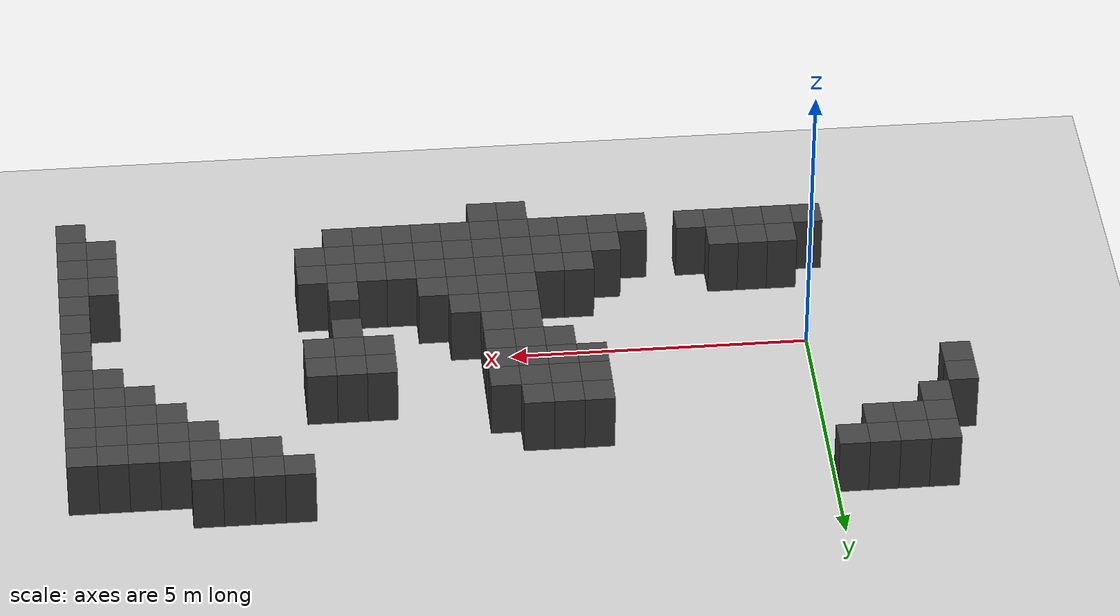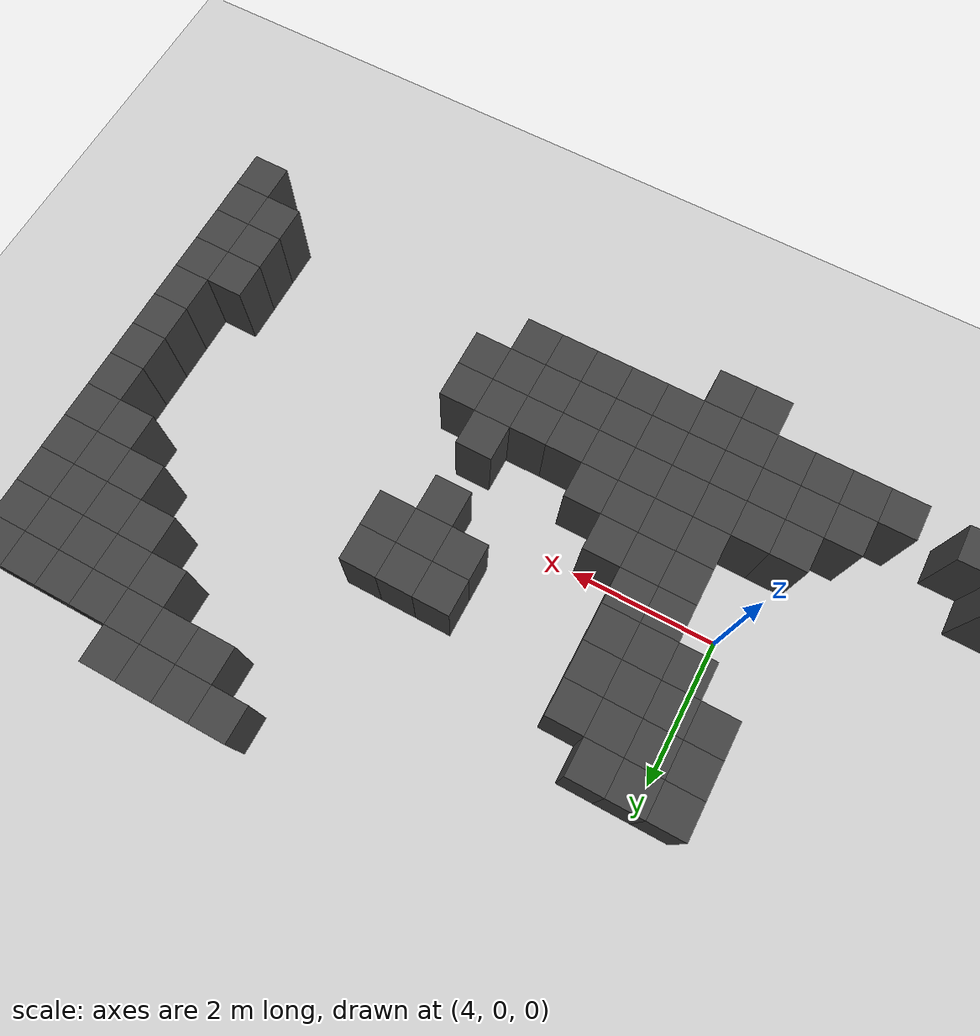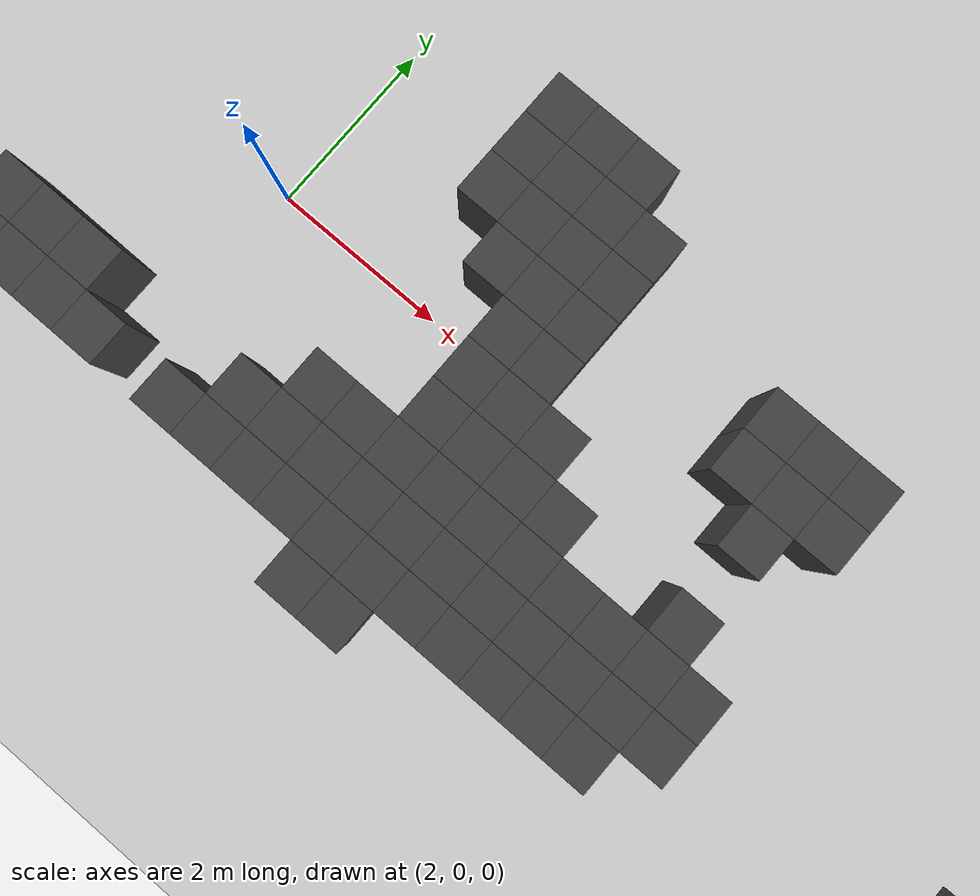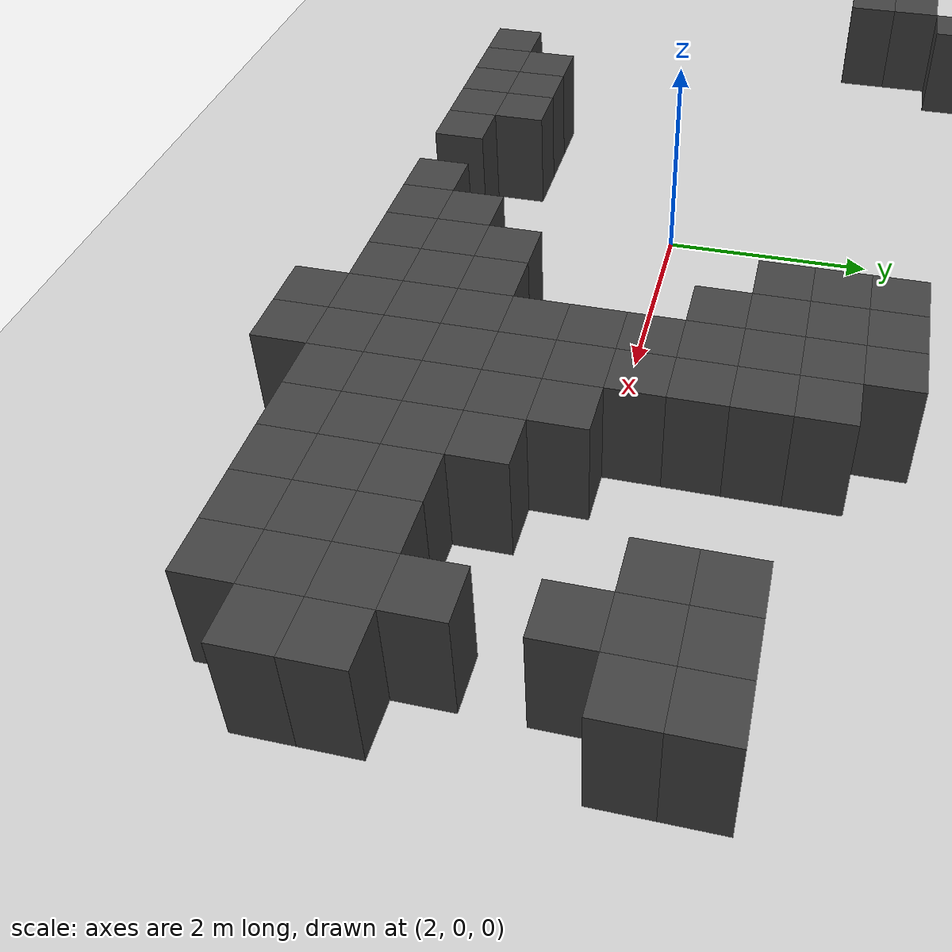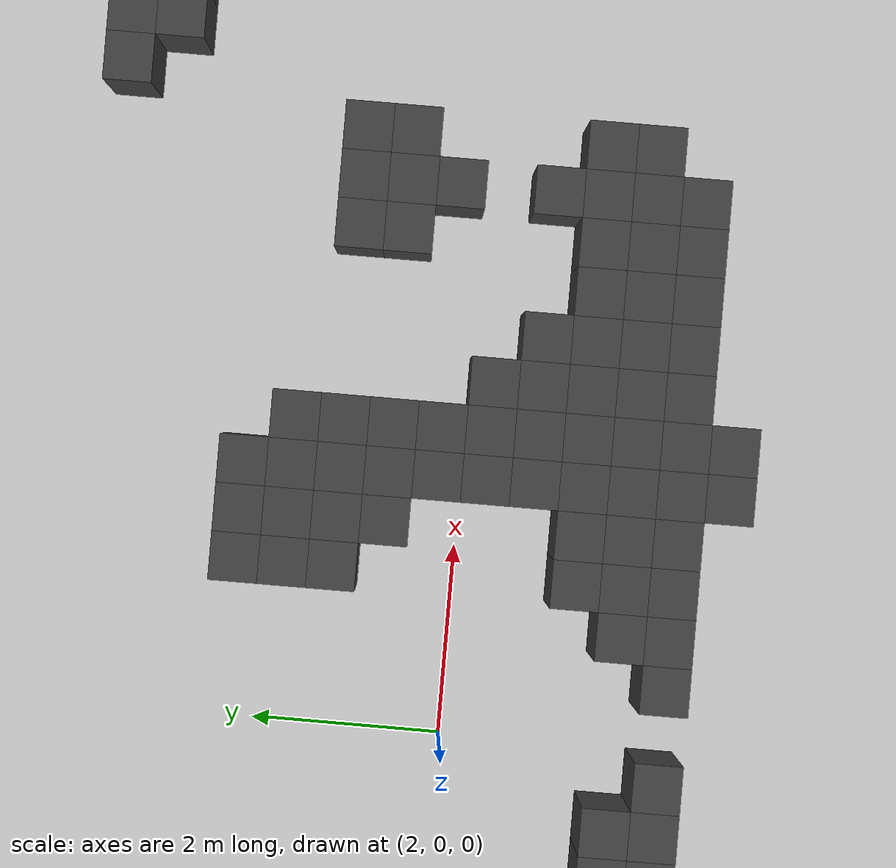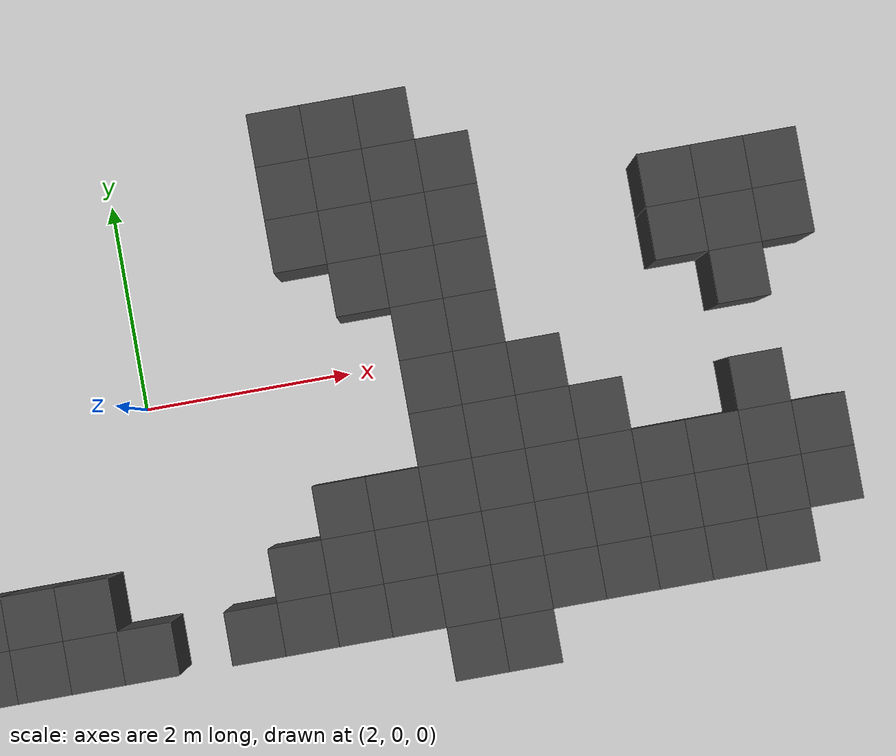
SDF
<sdf version="1.7">
 <world name="map_9705">
  <model name="ground_plane">
   <static>true</static>
   <link name="link">
    <collision name="collision">
     <geometry><plane><normal>0 0 1</normal><size>200 200</size></plane></geometry>
    </collision>
    <visual name="visual">
     <geometry><plane><normal>0 0 1</normal><size>200 200</size></plane></geometry>
     <material><ambient>0.8 0.8 0.8 1</ambient><diffuse>0.8 0.8 0.8 1</diffuse></material>
    </visual>
   </link>
  </model>
  <model name="maze_environment">
   <static>true</static>
   <link name="wall_421">
    <pose>-1.750 3.750 0.500 0 0 0</pose>
    <collision name="col"><geometry><box><size>0.5 0.5 1.0</size></box></geometry></collision>
    <visual name="vis">
     <geometry><box><size>0.5 0.5 1.0</size></box></geometry>
     <material><ambient>0.15 0.15 0.15 1</ambient><diffuse>0.25 0.25 0.25 1</diffuse></material>
    </visual>
   </link>
   <link name="wall_422">
    <pose>-1.250 3.750 0.500 0 0 0</pose>
    <collision name="col"><geometry><box><size>0.5 0.5 1.0</size></box></geometry></collision>
    <visual name="vis">
     <geometry><box><size>0.5 0.5 1.0</size></box></geometry>
     <material><ambient>0.15 0.15 0.15 1</ambient><diffuse>0.25 0.25 0.25 1</diffuse></material>
    </visual>
   </link>
   <link name="wall_423">
    <pose>-0.750 3.750 0.500 0 0 0</pose>
    <collision name="col"><geometry><box><size>0.5 0.5 1.0</size></box></geometry></collision>
    <visual name="vis">
     <geometry><box><size>0.5 0.5 1.0</size></box></geometry>
     <material><ambient>0.15 0.15 0.15 1</ambient><diffuse>0.25 0.25 0.25 1</diffuse></material>
    </visual>
   </link>
   <link name="wall_424">
    <pose>-0.250 3.750 0.500 0 0 0</pose>
    <collision name="col"><geometry><box><size>0.5 0.5 1.0</size></box></geometry></collision>
    <visual name="vis">
     <geometry><box><size>0.5 0.5 1.0</size></box></geometry>
     <material><ambient>0.15 0.15 0.15 1</ambient><diffuse>0.25 0.25 0.25 1</diffuse></material>
    </visual>
   </link>
   <link name="wall_425">
    <pose>8.750 3.750 0.500 0 0 0</pose>
    <collision name="col"><geometry><box><size>0.5 0.5 1.0</size></box></geometry></collision>
    <visual name="vis">
     <geometry><box><size>0.5 0.5 1.0</size></box></geometry>
     <material><ambient>0.15 0.15 0.15 1</ambient><diffuse>0.25 0.25 0.25 1</diffuse></material>
    </visual>
   </link>
   <link name="wall_426">
    <pose>9.250 3.750 0.500 0 0 0</pose>
    <collision name="col"><geometry><box><size>0.5 0.5 1.0</size></box></geometry></collision>
    <visual name="vis">
     <geometry><box><size>0.5 0.5 1.0</size></box></geometry>
     <material><ambient>0.15 0.15 0.15 1</ambient><diffuse>0.25 0.25 0.25 1</diffuse></material>
    </visual>
   </link>
   <link name="wall_427">
    <pose>9.750 3.750 0.500 0 0 0</pose>
    <collision name="col"><geometry><box><size>0.5 0.5 1.0</size></box></geometry></collision>
    <visual name="vis">
     <geometry><box><size>0.5 0.5 1.0</size></box></geometry>
     <material><ambient>0.15 0.15 0.15 1</ambient><diffuse>0.25 0.25 0.25 1</diffuse></material>
    </visual>
   </link>
   <link name="wall_428">
    <pose>10.250 3.750 0.500 0 0 0</pose>
    <collision name="col"><geometry><box><size>0.5 0.5 1.0</size></box></geometry></collision>
    <visual name="vis">
     <geometry><box><size>0.5 0.5 1.0</size></box></geometry>
     <material><ambient>0.15 0.15 0.15 1</ambient><diffuse>0.25 0.25 0.25 1</diffuse></material>
    </visual>
   </link>
   <link name="wall_452">
    <pose>-1.750 3.250 0.500 0 0 0</pose>
    <collision name="col"><geometry><box><size>0.5 0.5 1.0</size></box></geometry></collision>
    <visual name="vis">
     <geometry><box><size>0.5 0.5 1.0</size></box></geometry>
     <material><ambient>0.15 0.15 0.15 1</ambient><diffuse>0.25 0.25 0.25 1</diffuse></material>
    </visual>
   </link>
   <link name="wall_453">
    <pose>-1.250 3.250 0.500 0 0 0</pose>
    <collision name="col"><geometry><box><size>0.5 0.5 1.0</size></box></geometry></collision>
    <visual name="vis">
     <geometry><box><size>0.5 0.5 1.0</size></box></geometry>
     <material><ambient>0.15 0.15 0.15 1</ambient><diffuse>0.25 0.25 0.25 1</diffuse></material>
    </visual>
   </link>
   <link name="wall_454">
    <pose>-0.750 3.250 0.500 0 0 0</pose>
    <collision name="col"><geometry><box><size>0.5 0.5 1.0</size></box></geometry></collision>
    <visual name="vis">
     <geometry><box><size>0.5 0.5 1.0</size></box></geometry>
     <material><ambient>0.15 0.15 0.15 1</ambient><diffuse>0.25 0.25 0.25 1</diffuse></material>
    </visual>
   </link>
   <link name="wall_455">
    <pose>9.250 3.250 0.500 0 0 0</pose>
    <collision name="col"><geometry><box><size>0.5 0.5 1.0</size></box></geometry></collision>
    <visual name="vis">
     <geometry><box><size>0.5 0.5 1.0</size></box></geometry>
     <material><ambient>0.15 0.15 0.15 1</ambient><diffuse>0.25 0.25 0.25 1</diffuse></material>
    </visual>
   </link>
   <link name="wall_456">
    <pose>9.750 3.250 0.500 0 0 0</pose>
    <collision name="col"><geometry><box><size>0.5 0.5 1.0</size></box></geometry></collision>
    <visual name="vis">
     <geometry><box><size>0.5 0.5 1.0</size></box></geometry>
     <material><ambient>0.15 0.15 0.15 1</ambient><diffuse>0.25 0.25 0.25 1</diffuse></material>
    </visual>
   </link>
   <link name="wall_457">
    <pose>10.250 3.250 0.500 0 0 0</pose>
    <collision name="col"><geometry><box><size>0.5 0.5 1.0</size></box></geometry></collision>
    <visual name="vis">
     <geometry><box><size>0.5 0.5 1.0</size></box></geometry>
     <material><ambient>0.15 0.15 0.15 1</ambient><diffuse>0.25 0.25 0.25 1</diffuse></material>
    </visual>
   </link>
   <link name="wall_458">
    <pose>10.750 3.250 0.500 0 0 0</pose>
    <collision name="col"><geometry><box><size>0.5 0.5 1.0</size></box></geometry></collision>
    <visual name="vis">
     <geometry><box><size>0.5 0.5 1.0</size></box></geometry>
     <material><ambient>0.15 0.15 0.15 1</ambient><diffuse>0.25 0.25 0.25 1</diffuse></material>
    </visual>
   </link>
   <link name="wall_459">
    <pose>11.250 3.250 0.500 0 0 0</pose>
    <collision name="col"><geometry><box><size>0.5 0.5 1.0</size></box></geometry></collision>
    <visual name="vis">
     <geometry><box><size>0.5 0.5 1.0</size></box></geometry>
     <material><ambient>0.15 0.15 0.15 1</ambient><diffuse>0.25 0.25 0.25 1</diffuse></material>
    </visual>
   </link>
   <link name="wall_460">
    <pose>11.750 3.250 0.500 0 0 0</pose>
    <collision name="col"><geometry><box><size>0.5 0.5 1.0</size></box></geometry></collision>
    <visual name="vis">
     <geometry><box><size>0.5 0.5 1.0</size></box></geometry>
     <material><ambient>0.15 0.15 0.15 1</ambient><diffuse>0.25 0.25 0.25 1</diffuse></material>
    </visual>
   </link>
   <link name="wall_461">
    <pose>12.250 3.250 0.500 0 0 0</pose>
    <collision name="col"><geometry><box><size>0.5 0.5 1.0</size></box></geometry></collision>
    <visual name="vis">
     <geometry><box><size>0.5 0.5 1.0</size></box></geometry>
     <material><ambient>0.15 0.15 0.15 1</ambient><diffuse>0.25 0.25 0.25 1</diffuse></material>
    </visual>
   </link>
   <link name="wall_480">
    <pose>-1.750 2.750 0.500 0 0 0</pose>
    <collision name="col"><geometry><box><size>0.5 0.5 1.0</size></box></geometry></collision>
    <visual name="vis">
     <geometry><box><size>0.5 0.5 1.0</size></box></geometry>
     <material><ambient>0.15 0.15 0.15 1</ambient><diffuse>0.25 0.25 0.25 1</diffuse></material>
    </visual>
   </link>
   <link name="wall_481">
    <pose>10.250 2.750 0.500 0 0 0</pose>
    <collision name="col"><geometry><box><size>0.5 0.5 1.0</size></box></geometry></collision>
    <visual name="vis">
     <geometry><box><size>0.5 0.5 1.0</size></box></geometry>
     <material><ambient>0.15 0.15 0.15 1</ambient><diffuse>0.25 0.25 0.25 1</diffuse></material>
    </visual>
   </link>
   <link name="wall_482">
    <pose>10.750 2.750 0.500 0 0 0</pose>
    <collision name="col"><geometry><box><size>0.5 0.5 1.0</size></box></geometry></collision>
    <visual name="vis">
     <geometry><box><size>0.5 0.5 1.0</size></box></geometry>
     <material><ambient>0.15 0.15 0.15 1</ambient><diffuse>0.25 0.25 0.25 1</diffuse></material>
    </visual>
   </link>
   <link name="wall_483">
    <pose>11.250 2.750 0.500 0 0 0</pose>
    <collision name="col"><geometry><box><size>0.5 0.5 1.0</size></box></geometry></collision>
    <visual name="vis">
     <geometry><box><size>0.5 0.5 1.0</size></box></geometry>
     <material><ambient>0.15 0.15 0.15 1</ambient><diffuse>0.25 0.25 0.25 1</diffuse></material>
    </visual>
   </link>
   <link name="wall_484">
    <pose>11.750 2.750 0.500 0 0 0</pose>
    <collision name="col"><geometry><box><size>0.5 0.5 1.0</size></box></geometry></collision>
    <visual name="vis">
     <geometry><box><size>0.5 0.5 1.0</size></box></geometry>
     <material><ambient>0.15 0.15 0.15 1</ambient><diffuse>0.25 0.25 0.25 1</diffuse></material>
    </visual>
   </link>
   <link name="wall_485">
    <pose>12.250 2.750 0.500 0 0 0</pose>
    <collision name="col"><geometry><box><size>0.5 0.5 1.0</size></box></geometry></collision>
    <visual name="vis">
     <geometry><box><size>0.5 0.5 1.0</size></box></geometry>
     <material><ambient>0.15 0.15 0.15 1</ambient><diffuse>0.25 0.25 0.25 1</diffuse></material>
    </visual>
   </link>
   <link name="wall_500">
    <pose>-2.250 2.250 0.500 0 0 0</pose>
    <collision name="col"><geometry><box><size>0.5 0.5 1.0</size></box></geometry></collision>
    <visual name="vis">
     <geometry><box><size>0.5 0.5 1.0</size></box></geometry>
     <material><ambient>0.15 0.15 0.15 1</ambient><diffuse>0.25 0.25 0.25 1</diffuse></material>
    </visual>
   </link>
   <link name="wall_501">
    <pose>3.750 2.250 0.500 0 0 0</pose>
    <collision name="col"><geometry><box><size>0.5 0.5 1.0</size></box></geometry></collision>
    <visual name="vis">
     <geometry><box><size>0.5 0.5 1.0</size></box></geometry>
     <material><ambient>0.15 0.15 0.15 1</ambient><diffuse>0.25 0.25 0.25 1</diffuse></material>
    </visual>
   </link>
   <link name="wall_502">
    <pose>4.250 2.250 0.500 0 0 0</pose>
    <collision name="col"><geometry><box><size>0.5 0.5 1.0</size></box></geometry></collision>
    <visual name="vis">
     <geometry><box><size>0.5 0.5 1.0</size></box></geometry>
     <material><ambient>0.15 0.15 0.15 1</ambient><diffuse>0.25 0.25 0.25 1</diffuse></material>
    </visual>
   </link>
   <link name="wall_503">
    <pose>4.750 2.250 0.500 0 0 0</pose>
    <collision name="col"><geometry><box><size>0.5 0.5 1.0</size></box></geometry></collision>
    <visual name="vis">
     <geometry><box><size>0.5 0.5 1.0</size></box></geometry>
     <material><ambient>0.15 0.15 0.15 1</ambient><diffuse>0.25 0.25 0.25 1</diffuse></material>
    </visual>
   </link>
   <link name="wall_504">
    <pose>10.750 2.250 0.500 0 0 0</pose>
    <collision name="col"><geometry><box><size>0.5 0.5 1.0</size></box></geometry></collision>
    <visual name="vis">
     <geometry><box><size>0.5 0.5 1.0</size></box></geometry>
     <material><ambient>0.15 0.15 0.15 1</ambient><diffuse>0.25 0.25 0.25 1</diffuse></material>
    </visual>
   </link>
   <link name="wall_505">
    <pose>11.250 2.250 0.500 0 0 0</pose>
    <collision name="col"><geometry><box><size>0.5 0.5 1.0</size></box></geometry></collision>
    <visual name="vis">
     <geometry><box><size>0.5 0.5 1.0</size></box></geometry>
     <material><ambient>0.15 0.15 0.15 1</ambient><diffuse>0.25 0.25 0.25 1</diffuse></material>
    </visual>
   </link>
   <link name="wall_506">
    <pose>11.750 2.250 0.500 0 0 0</pose>
    <collision name="col"><geometry><box><size>0.5 0.5 1.0</size></box></geometry></collision>
    <visual name="vis">
     <geometry><box><size>0.5 0.5 1.0</size></box></geometry>
     <material><ambient>0.15 0.15 0.15 1</ambient><diffuse>0.25 0.25 0.25 1</diffuse></material>
    </visual>
   </link>
   <link name="wall_507">
    <pose>12.250 2.250 0.500 0 0 0</pose>
    <collision name="col"><geometry><box><size>0.5 0.5 1.0</size></box></geometry></collision>
    <visual name="vis">
     <geometry><box><size>0.5 0.5 1.0</size></box></geometry>
     <material><ambient>0.15 0.15 0.15 1</ambient><diffuse>0.25 0.25 0.25 1</diffuse></material>
    </visual>
   </link>
   <link name="wall_517">
    <pose>-2.250 1.750 0.500 0 0 0</pose>
    <collision name="col"><geometry><box><size>0.5 0.5 1.0</size></box></geometry></collision>
    <visual name="vis">
     <geometry><box><size>0.5 0.5 1.0</size></box></geometry>
     <material><ambient>0.15 0.15 0.15 1</ambient><diffuse>0.25 0.25 0.25 1</diffuse></material>
    </visual>
   </link>
   <link name="wall_518">
    <pose>3.750 1.750 0.500 0 0 0</pose>
    <collision name="col"><geometry><box><size>0.5 0.5 1.0</size></box></geometry></collision>
    <visual name="vis">
     <geometry><box><size>0.5 0.5 1.0</size></box></geometry>
     <material><ambient>0.15 0.15 0.15 1</ambient><diffuse>0.25 0.25 0.25 1</diffuse></material>
    </visual>
   </link>
   <link name="wall_519">
    <pose>4.250 1.750 0.500 0 0 0</pose>
    <collision name="col"><geometry><box><size>0.5 0.5 1.0</size></box></geometry></collision>
    <visual name="vis">
     <geometry><box><size>0.5 0.5 1.0</size></box></geometry>
     <material><ambient>0.15 0.15 0.15 1</ambient><diffuse>0.25 0.25 0.25 1</diffuse></material>
    </visual>
   </link>
   <link name="wall_520">
    <pose>4.750 1.750 0.500 0 0 0</pose>
    <collision name="col"><geometry><box><size>0.5 0.5 1.0</size></box></geometry></collision>
    <visual name="vis">
     <geometry><box><size>0.5 0.5 1.0</size></box></geometry>
     <material><ambient>0.15 0.15 0.15 1</ambient><diffuse>0.25 0.25 0.25 1</diffuse></material>
    </visual>
   </link>
   <link name="wall_521">
    <pose>5.250 1.750 0.500 0 0 0</pose>
    <collision name="col"><geometry><box><size>0.5 0.5 1.0</size></box></geometry></collision>
    <visual name="vis">
     <geometry><box><size>0.5 0.5 1.0</size></box></geometry>
     <material><ambient>0.15 0.15 0.15 1</ambient><diffuse>0.25 0.25 0.25 1</diffuse></material>
    </visual>
   </link>
   <link name="wall_522">
    <pose>11.250 1.750 0.500 0 0 0</pose>
    <collision name="col"><geometry><box><size>0.5 0.5 1.0</size></box></geometry></collision>
    <visual name="vis">
     <geometry><box><size>0.5 0.5 1.0</size></box></geometry>
     <material><ambient>0.15 0.15 0.15 1</ambient><diffuse>0.25 0.25 0.25 1</diffuse></material>
    </visual>
   </link>
   <link name="wall_523">
    <pose>11.750 1.750 0.500 0 0 0</pose>
    <collision name="col"><geometry><box><size>0.5 0.5 1.0</size></box></geometry></collision>
    <visual name="vis">
     <geometry><box><size>0.5 0.5 1.0</size></box></geometry>
     <material><ambient>0.15 0.15 0.15 1</ambient><diffuse>0.25 0.25 0.25 1</diffuse></material>
    </visual>
   </link>
   <link name="wall_524">
    <pose>12.250 1.750 0.500 0 0 0</pose>
    <collision name="col"><geometry><box><size>0.5 0.5 1.0</size></box></geometry></collision>
    <visual name="vis">
     <geometry><box><size>0.5 0.5 1.0</size></box></geometry>
     <material><ambient>0.15 0.15 0.15 1</ambient><diffuse>0.25 0.25 0.25 1</diffuse></material>
    </visual>
   </link>
   <link name="wall_533">
    <pose>3.750 1.250 0.500 0 0 0</pose>
    <collision name="col"><geometry><box><size>0.5 0.5 1.0</size></box></geometry></collision>
    <visual name="vis">
     <geometry><box><size>0.5 0.5 1.0</size></box></geometry>
     <material><ambient>0.15 0.15 0.15 1</ambient><diffuse>0.25 0.25 0.25 1</diffuse></material>
    </visual>
   </link>
   <link name="wall_534">
    <pose>4.250 1.250 0.500 0 0 0</pose>
    <collision name="col"><geometry><box><size>0.5 0.5 1.0</size></box></geometry></collision>
    <visual name="vis">
     <geometry><box><size>0.5 0.5 1.0</size></box></geometry>
     <material><ambient>0.15 0.15 0.15 1</ambient><diffuse>0.25 0.25 0.25 1</diffuse></material>
    </visual>
   </link>
   <link name="wall_535">
    <pose>4.750 1.250 0.500 0 0 0</pose>
    <collision name="col"><geometry><box><size>0.5 0.5 1.0</size></box></geometry></collision>
    <visual name="vis">
     <geometry><box><size>0.5 0.5 1.0</size></box></geometry>
     <material><ambient>0.15 0.15 0.15 1</ambient><diffuse>0.25 0.25 0.25 1</diffuse></material>
    </visual>
   </link>
   <link name="wall_536">
    <pose>5.250 1.250 0.500 0 0 0</pose>
    <collision name="col"><geometry><box><size>0.5 0.5 1.0</size></box></geometry></collision>
    <visual name="vis">
     <geometry><box><size>0.5 0.5 1.0</size></box></geometry>
     <material><ambient>0.15 0.15 0.15 1</ambient><diffuse>0.25 0.25 0.25 1</diffuse></material>
    </visual>
   </link>
   <link name="wall_537">
    <pose>7.250 1.250 0.500 0 0 0</pose>
    <collision name="col"><geometry><box><size>0.5 0.5 1.0</size></box></geometry></collision>
    <visual name="vis">
     <geometry><box><size>0.5 0.5 1.0</size></box></geometry>
     <material><ambient>0.15 0.15 0.15 1</ambient><diffuse>0.25 0.25 0.25 1</diffuse></material>
    </visual>
   </link>
   <link name="wall_538">
    <pose>7.750 1.250 0.500 0 0 0</pose>
    <collision name="col"><geometry><box><size>0.5 0.5 1.0</size></box></geometry></collision>
    <visual name="vis">
     <geometry><box><size>0.5 0.5 1.0</size></box></geometry>
     <material><ambient>0.15 0.15 0.15 1</ambient><diffuse>0.25 0.25 0.25 1</diffuse></material>
    </visual>
   </link>
   <link name="wall_539">
    <pose>8.250 1.250 0.500 0 0 0</pose>
    <collision name="col"><geometry><box><size>0.5 0.5 1.0</size></box></geometry></collision>
    <visual name="vis">
     <geometry><box><size>0.5 0.5 1.0</size></box></geometry>
     <material><ambient>0.15 0.15 0.15 1</ambient><diffuse>0.25 0.25 0.25 1</diffuse></material>
    </visual>
   </link>
   <link name="wall_540">
    <pose>11.750 1.250 0.500 0 0 0</pose>
    <collision name="col"><geometry><box><size>0.5 0.5 1.0</size></box></geometry></collision>
    <visual name="vis">
     <geometry><box><size>0.5 0.5 1.0</size></box></geometry>
     <material><ambient>0.15 0.15 0.15 1</ambient><diffuse>0.25 0.25 0.25 1</diffuse></material>
    </visual>
   </link>
   <link name="wall_541">
    <pose>12.250 1.250 0.500 0 0 0</pose>
    <collision name="col"><geometry><box><size>0.5 0.5 1.0</size></box></geometry></collision>
    <visual name="vis">
     <geometry><box><size>0.5 0.5 1.0</size></box></geometry>
     <material><ambient>0.15 0.15 0.15 1</ambient><diffuse>0.25 0.25 0.25 1</diffuse></material>
    </visual>
   </link>
   <link name="wall_548">
    <pose>4.250 0.750 0.500 0 0 0</pose>
    <collision name="col"><geometry><box><size>0.5 0.5 1.0</size></box></geometry></collision>
    <visual name="vis">
     <geometry><box><size>0.5 0.5 1.0</size></box></geometry>
     <material><ambient>0.15 0.15 0.15 1</ambient><diffuse>0.25 0.25 0.25 1</diffuse></material>
    </visual>
   </link>
   <link name="wall_549">
    <pose>4.750 0.750 0.500 0 0 0</pose>
    <collision name="col"><geometry><box><size>0.5 0.5 1.0</size></box></geometry></collision>
    <visual name="vis">
     <geometry><box><size>0.5 0.5 1.0</size></box></geometry>
     <material><ambient>0.15 0.15 0.15 1</ambient><diffuse>0.25 0.25 0.25 1</diffuse></material>
    </visual>
   </link>
   <link name="wall_550">
    <pose>5.250 0.750 0.500 0 0 0</pose>
    <collision name="col"><geometry><box><size>0.5 0.5 1.0</size></box></geometry></collision>
    <visual name="vis">
     <geometry><box><size>0.5 0.5 1.0</size></box></geometry>
     <material><ambient>0.15 0.15 0.15 1</ambient><diffuse>0.25 0.25 0.25 1</diffuse></material>
    </visual>
   </link>
   <link name="wall_551">
    <pose>7.250 0.750 0.500 0 0 0</pose>
    <collision name="col"><geometry><box><size>0.5 0.5 1.0</size></box></geometry></collision>
    <visual name="vis">
     <geometry><box><size>0.5 0.5 1.0</size></box></geometry>
     <material><ambient>0.15 0.15 0.15 1</ambient><diffuse>0.25 0.25 0.25 1</diffuse></material>
    </visual>
   </link>
   <link name="wall_552">
    <pose>7.750 0.750 0.500 0 0 0</pose>
    <collision name="col"><geometry><box><size>0.5 0.5 1.0</size></box></geometry></collision>
    <visual name="vis">
     <geometry><box><size>0.5 0.5 1.0</size></box></geometry>
     <material><ambient>0.15 0.15 0.15 1</ambient><diffuse>0.25 0.25 0.25 1</diffuse></material>
    </visual>
   </link>
   <link name="wall_553">
    <pose>8.250 0.750 0.500 0 0 0</pose>
    <collision name="col"><geometry><box><size>0.5 0.5 1.0</size></box></geometry></collision>
    <visual name="vis">
     <geometry><box><size>0.5 0.5 1.0</size></box></geometry>
     <material><ambient>0.15 0.15 0.15 1</ambient><diffuse>0.25 0.25 0.25 1</diffuse></material>
    </visual>
   </link>
   <link name="wall_554">
    <pose>12.250 0.750 0.500 0 0 0</pose>
    <collision name="col"><geometry><box><size>0.5 0.5 1.0</size></box></geometry></collision>
    <visual name="vis">
     <geometry><box><size>0.5 0.5 1.0</size></box></geometry>
     <material><ambient>0.15 0.15 0.15 1</ambient><diffuse>0.25 0.25 0.25 1</diffuse></material>
    </visual>
   </link>
   <link name="wall_563">
    <pose>4.750 0.250 0.500 0 0 0</pose>
    <collision name="col"><geometry><box><size>0.5 0.5 1.0</size></box></geometry></collision>
    <visual name="vis">
     <geometry><box><size>0.5 0.5 1.0</size></box></geometry>
     <material><ambient>0.15 0.15 0.15 1</ambient><diffuse>0.25 0.25 0.25 1</diffuse></material>
    </visual>
   </link>
   <link name="wall_564">
    <pose>5.250 0.250 0.500 0 0 0</pose>
    <collision name="col"><geometry><box><size>0.5 0.5 1.0</size></box></geometry></collision>
    <visual name="vis">
     <geometry><box><size>0.5 0.5 1.0</size></box></geometry>
     <material><ambient>0.15 0.15 0.15 1</ambient><diffuse>0.25 0.25 0.25 1</diffuse></material>
    </visual>
   </link>
   <link name="wall_565">
    <pose>7.750 0.250 0.500 0 0 0</pose>
    <collision name="col"><geometry><box><size>0.5 0.5 1.0</size></box></geometry></collision>
    <visual name="vis">
     <geometry><box><size>0.5 0.5 1.0</size></box></geometry>
     <material><ambient>0.15 0.15 0.15 1</ambient><diffuse>0.25 0.25 0.25 1</diffuse></material>
    </visual>
   </link>
   <link name="wall_566">
    <pose>12.250 0.250 0.500 0 0 0</pose>
    <collision name="col"><geometry><box><size>0.5 0.5 1.0</size></box></geometry></collision>
    <visual name="vis">
     <geometry><box><size>0.5 0.5 1.0</size></box></geometry>
     <material><ambient>0.15 0.15 0.15 1</ambient><diffuse>0.25 0.25 0.25 1</diffuse></material>
    </visual>
   </link>
   <link name="wall_577">
    <pose>4.750 -0.250 0.500 0 0 0</pose>
    <collision name="col"><geometry><box><size>0.5 0.5 1.0</size></box></geometry></collision>
    <visual name="vis">
     <geometry><box><size>0.5 0.5 1.0</size></box></geometry>
     <material><ambient>0.15 0.15 0.15 1</ambient><diffuse>0.25 0.25 0.25 1</diffuse></material>
    </visual>
   </link>
   <link name="wall_578">
    <pose>5.250 -0.250 0.500 0 0 0</pose>
    <collision name="col"><geometry><box><size>0.5 0.5 1.0</size></box></geometry></collision>
    <visual name="vis">
     <geometry><box><size>0.5 0.5 1.0</size></box></geometry>
     <material><ambient>0.15 0.15 0.15 1</ambient><diffuse>0.25 0.25 0.25 1</diffuse></material>
    </visual>
   </link>
   <link name="wall_579">
    <pose>5.750 -0.250 0.500 0 0 0</pose>
    <collision name="col"><geometry><box><size>0.5 0.5 1.0</size></box></geometry></collision>
    <visual name="vis">
     <geometry><box><size>0.5 0.5 1.0</size></box></geometry>
     <material><ambient>0.15 0.15 0.15 1</ambient><diffuse>0.25 0.25 0.25 1</diffuse></material>
    </visual>
   </link>
   <link name="wall_580">
    <pose>12.250 -0.250 0.500 0 0 0</pose>
    <collision name="col"><geometry><box><size>0.5 0.5 1.0</size></box></geometry></collision>
    <visual name="vis">
     <geometry><box><size>0.5 0.5 1.0</size></box></geometry>
     <material><ambient>0.15 0.15 0.15 1</ambient><diffuse>0.25 0.25 0.25 1</diffuse></material>
    </visual>
   </link>
   <link name="wall_594">
    <pose>4.750 -0.750 0.500 0 0 0</pose>
    <collision name="col"><geometry><box><size>0.5 0.5 1.0</size></box></geometry></collision>
    <visual name="vis">
     <geometry><box><size>0.5 0.5 1.0</size></box></geometry>
     <material><ambient>0.15 0.15 0.15 1</ambient><diffuse>0.25 0.25 0.25 1</diffuse></material>
    </visual>
   </link>
   <link name="wall_595">
    <pose>5.250 -0.750 0.500 0 0 0</pose>
    <collision name="col"><geometry><box><size>0.5 0.5 1.0</size></box></geometry></collision>
    <visual name="vis">
     <geometry><box><size>0.5 0.5 1.0</size></box></geometry>
     <material><ambient>0.15 0.15 0.15 1</ambient><diffuse>0.25 0.25 0.25 1</diffuse></material>
    </visual>
   </link>
   <link name="wall_596">
    <pose>5.750 -0.750 0.500 0 0 0</pose>
    <collision name="col"><geometry><box><size>0.5 0.5 1.0</size></box></geometry></collision>
    <visual name="vis">
     <geometry><box><size>0.5 0.5 1.0</size></box></geometry>
     <material><ambient>0.15 0.15 0.15 1</ambient><diffuse>0.25 0.25 0.25 1</diffuse></material>
    </visual>
   </link>
   <link name="wall_597">
    <pose>6.250 -0.750 0.500 0 0 0</pose>
    <collision name="col"><geometry><box><size>0.5 0.5 1.0</size></box></geometry></collision>
    <visual name="vis">
     <geometry><box><size>0.5 0.5 1.0</size></box></geometry>
     <material><ambient>0.15 0.15 0.15 1</ambient><diffuse>0.25 0.25 0.25 1</diffuse></material>
    </visual>
   </link>
   <link name="wall_598">
    <pose>7.750 -0.750 0.500 0 0 0</pose>
    <collision name="col"><geometry><box><size>0.5 0.5 1.0</size></box></geometry></collision>
    <visual name="vis">
     <geometry><box><size>0.5 0.5 1.0</size></box></geometry>
     <material><ambient>0.15 0.15 0.15 1</ambient><diffuse>0.25 0.25 0.25 1</diffuse></material>
    </visual>
   </link>
   <link name="wall_599">
    <pose>12.250 -0.750 0.500 0 0 0</pose>
    <collision name="col"><geometry><box><size>0.5 0.5 1.0</size></box></geometry></collision>
    <visual name="vis">
     <geometry><box><size>0.5 0.5 1.0</size></box></geometry>
     <material><ambient>0.15 0.15 0.15 1</ambient><diffuse>0.25 0.25 0.25 1</diffuse></material>
    </visual>
   </link>
   <link name="wall_611">
    <pose>3.750 -1.250 0.500 0 0 0</pose>
    <collision name="col"><geometry><box><size>0.5 0.5 1.0</size></box></geometry></collision>
    <visual name="vis">
     <geometry><box><size>0.5 0.5 1.0</size></box></geometry>
     <material><ambient>0.15 0.15 0.15 1</ambient><diffuse>0.25 0.25 0.25 1</diffuse></material>
    </visual>
   </link>
   <link name="wall_612">
    <pose>4.250 -1.250 0.500 0 0 0</pose>
    <collision name="col"><geometry><box><size>0.5 0.5 1.0</size></box></geometry></collision>
    <visual name="vis">
     <geometry><box><size>0.5 0.5 1.0</size></box></geometry>
     <material><ambient>0.15 0.15 0.15 1</ambient><diffuse>0.25 0.25 0.25 1</diffuse></material>
    </visual>
   </link>
   <link name="wall_613">
    <pose>4.750 -1.250 0.500 0 0 0</pose>
    <collision name="col"><geometry><box><size>0.5 0.5 1.0</size></box></geometry></collision>
    <visual name="vis">
     <geometry><box><size>0.5 0.5 1.0</size></box></geometry>
     <material><ambient>0.15 0.15 0.15 1</ambient><diffuse>0.25 0.25 0.25 1</diffuse></material>
    </visual>
   </link>
   <link name="wall_614">
    <pose>5.250 -1.250 0.500 0 0 0</pose>
    <collision name="col"><geometry><box><size>0.5 0.5 1.0</size></box></geometry></collision>
    <visual name="vis">
     <geometry><box><size>0.5 0.5 1.0</size></box></geometry>
     <material><ambient>0.15 0.15 0.15 1</ambient><diffuse>0.25 0.25 0.25 1</diffuse></material>
    </visual>
   </link>
   <link name="wall_615">
    <pose>5.750 -1.250 0.500 0 0 0</pose>
    <collision name="col"><geometry><box><size>0.5 0.5 1.0</size></box></geometry></collision>
    <visual name="vis">
     <geometry><box><size>0.5 0.5 1.0</size></box></geometry>
     <material><ambient>0.15 0.15 0.15 1</ambient><diffuse>0.25 0.25 0.25 1</diffuse></material>
    </visual>
   </link>
   <link name="wall_616">
    <pose>6.250 -1.250 0.500 0 0 0</pose>
    <collision name="col"><geometry><box><size>0.5 0.5 1.0</size></box></geometry></collision>
    <visual name="vis">
     <geometry><box><size>0.5 0.5 1.0</size></box></geometry>
     <material><ambient>0.15 0.15 0.15 1</ambient><diffuse>0.25 0.25 0.25 1</diffuse></material>
    </visual>
   </link>
   <link name="wall_617">
    <pose>6.750 -1.250 0.500 0 0 0</pose>
    <collision name="col"><geometry><box><size>0.5 0.5 1.0</size></box></geometry></collision>
    <visual name="vis">
     <geometry><box><size>0.5 0.5 1.0</size></box></geometry>
     <material><ambient>0.15 0.15 0.15 1</ambient><diffuse>0.25 0.25 0.25 1</diffuse></material>
    </visual>
   </link>
   <link name="wall_618">
    <pose>7.250 -1.250 0.500 0 0 0</pose>
    <collision name="col"><geometry><box><size>0.5 0.5 1.0</size></box></geometry></collision>
    <visual name="vis">
     <geometry><box><size>0.5 0.5 1.0</size></box></geometry>
     <material><ambient>0.15 0.15 0.15 1</ambient><diffuse>0.25 0.25 0.25 1</diffuse></material>
    </visual>
   </link>
   <link name="wall_619">
    <pose>7.750 -1.250 0.500 0 0 0</pose>
    <collision name="col"><geometry><box><size>0.5 0.5 1.0</size></box></geometry></collision>
    <visual name="vis">
     <geometry><box><size>0.5 0.5 1.0</size></box></geometry>
     <material><ambient>0.15 0.15 0.15 1</ambient><diffuse>0.25 0.25 0.25 1</diffuse></material>
    </visual>
   </link>
   <link name="wall_620">
    <pose>8.250 -1.250 0.500 0 0 0</pose>
    <collision name="col"><geometry><box><size>0.5 0.5 1.0</size></box></geometry></collision>
    <visual name="vis">
     <geometry><box><size>0.5 0.5 1.0</size></box></geometry>
     <material><ambient>0.15 0.15 0.15 1</ambient><diffuse>0.25 0.25 0.25 1</diffuse></material>
    </visual>
   </link>
   <link name="wall_621">
    <pose>11.750 -1.250 0.500 0 0 0</pose>
    <collision name="col"><geometry><box><size>0.5 0.5 1.0</size></box></geometry></collision>
    <visual name="vis">
     <geometry><box><size>0.5 0.5 1.0</size></box></geometry>
     <material><ambient>0.15 0.15 0.15 1</ambient><diffuse>0.25 0.25 0.25 1</diffuse></material>
    </visual>
   </link>
   <link name="wall_622">
    <pose>12.250 -1.250 0.500 0 0 0</pose>
    <collision name="col"><geometry><box><size>0.5 0.5 1.0</size></box></geometry></collision>
    <visual name="vis">
     <geometry><box><size>0.5 0.5 1.0</size></box></geometry>
     <material><ambient>0.15 0.15 0.15 1</ambient><diffuse>0.25 0.25 0.25 1</diffuse></material>
    </visual>
   </link>
   <link name="wall_631">
    <pose>0.250 -1.750 0.500 0 0 0</pose>
    <collision name="col"><geometry><box><size>0.5 0.5 1.0</size></box></geometry></collision>
    <visual name="vis">
     <geometry><box><size>0.5 0.5 1.0</size></box></geometry>
     <material><ambient>0.15 0.15 0.15 1</ambient><diffuse>0.25 0.25 0.25 1</diffuse></material>
    </visual>
   </link>
   <link name="wall_632">
    <pose>0.750 -1.750 0.500 0 0 0</pose>
    <collision name="col"><geometry><box><size>0.5 0.5 1.0</size></box></geometry></collision>
    <visual name="vis">
     <geometry><box><size>0.5 0.5 1.0</size></box></geometry>
     <material><ambient>0.15 0.15 0.15 1</ambient><diffuse>0.25 0.25 0.25 1</diffuse></material>
    </visual>
   </link>
   <link name="wall_633">
    <pose>1.250 -1.750 0.500 0 0 0</pose>
    <collision name="col"><geometry><box><size>0.5 0.5 1.0</size></box></geometry></collision>
    <visual name="vis">
     <geometry><box><size>0.5 0.5 1.0</size></box></geometry>
     <material><ambient>0.15 0.15 0.15 1</ambient><diffuse>0.25 0.25 0.25 1</diffuse></material>
    </visual>
   </link>
   <link name="wall_634">
    <pose>3.250 -1.750 0.500 0 0 0</pose>
    <collision name="col"><geometry><box><size>0.5 0.5 1.0</size></box></geometry></collision>
    <visual name="vis">
     <geometry><box><size>0.5 0.5 1.0</size></box></geometry>
     <material><ambient>0.15 0.15 0.15 1</ambient><diffuse>0.25 0.25 0.25 1</diffuse></material>
    </visual>
   </link>
   <link name="wall_635">
    <pose>3.750 -1.750 0.500 0 0 0</pose>
    <collision name="col"><geometry><box><size>0.5 0.5 1.0</size></box></geometry></collision>
    <visual name="vis">
     <geometry><box><size>0.5 0.5 1.0</size></box></geometry>
     <material><ambient>0.15 0.15 0.15 1</ambient><diffuse>0.25 0.25 0.25 1</diffuse></material>
    </visual>
   </link>
   <link name="wall_636">
    <pose>4.250 -1.750 0.500 0 0 0</pose>
    <collision name="col"><geometry><box><size>0.5 0.5 1.0</size></box></geometry></collision>
    <visual name="vis">
     <geometry><box><size>0.5 0.5 1.0</size></box></geometry>
     <material><ambient>0.15 0.15 0.15 1</ambient><diffuse>0.25 0.25 0.25 1</diffuse></material>
    </visual>
   </link>
   <link name="wall_637">
    <pose>4.750 -1.750 0.500 0 0 0</pose>
    <collision name="col"><geometry><box><size>0.5 0.5 1.0</size></box></geometry></collision>
    <visual name="vis">
     <geometry><box><size>0.5 0.5 1.0</size></box></geometry>
     <material><ambient>0.15 0.15 0.15 1</ambient><diffuse>0.25 0.25 0.25 1</diffuse></material>
    </visual>
   </link>
   <link name="wall_638">
    <pose>5.250 -1.750 0.500 0 0 0</pose>
    <collision name="col"><geometry><box><size>0.5 0.5 1.0</size></box></geometry></collision>
    <visual name="vis">
     <geometry><box><size>0.5 0.5 1.0</size></box></geometry>
     <material><ambient>0.15 0.15 0.15 1</ambient><diffuse>0.25 0.25 0.25 1</diffuse></material>
    </visual>
   </link>
   <link name="wall_639">
    <pose>5.750 -1.750 0.500 0 0 0</pose>
    <collision name="col"><geometry><box><size>0.5 0.5 1.0</size></box></geometry></collision>
    <visual name="vis">
     <geometry><box><size>0.5 0.5 1.0</size></box></geometry>
     <material><ambient>0.15 0.15 0.15 1</ambient><diffuse>0.25 0.25 0.25 1</diffuse></material>
    </visual>
   </link>
   <link name="wall_640">
    <pose>6.250 -1.750 0.500 0 0 0</pose>
    <collision name="col"><geometry><box><size>0.5 0.5 1.0</size></box></geometry></collision>
    <visual name="vis">
     <geometry><box><size>0.5 0.5 1.0</size></box></geometry>
     <material><ambient>0.15 0.15 0.15 1</ambient><diffuse>0.25 0.25 0.25 1</diffuse></material>
    </visual>
   </link>
   <link name="wall_641">
    <pose>6.750 -1.750 0.500 0 0 0</pose>
    <collision name="col"><geometry><box><size>0.5 0.5 1.0</size></box></geometry></collision>
    <visual name="vis">
     <geometry><box><size>0.5 0.5 1.0</size></box></geometry>
     <material><ambient>0.15 0.15 0.15 1</ambient><diffuse>0.25 0.25 0.25 1</diffuse></material>
    </visual>
   </link>
   <link name="wall_642">
    <pose>7.250 -1.750 0.500 0 0 0</pose>
    <collision name="col"><geometry><box><size>0.5 0.5 1.0</size></box></geometry></collision>
    <visual name="vis">
     <geometry><box><size>0.5 0.5 1.0</size></box></geometry>
     <material><ambient>0.15 0.15 0.15 1</ambient><diffuse>0.25 0.25 0.25 1</diffuse></material>
    </visual>
   </link>
   <link name="wall_643">
    <pose>7.750 -1.750 0.500 0 0 0</pose>
    <collision name="col"><geometry><box><size>0.5 0.5 1.0</size></box></geometry></collision>
    <visual name="vis">
     <geometry><box><size>0.5 0.5 1.0</size></box></geometry>
     <material><ambient>0.15 0.15 0.15 1</ambient><diffuse>0.25 0.25 0.25 1</diffuse></material>
    </visual>
   </link>
   <link name="wall_644">
    <pose>8.250 -1.750 0.500 0 0 0</pose>
    <collision name="col"><geometry><box><size>0.5 0.5 1.0</size></box></geometry></collision>
    <visual name="vis">
     <geometry><box><size>0.5 0.5 1.0</size></box></geometry>
     <material><ambient>0.15 0.15 0.15 1</ambient><diffuse>0.25 0.25 0.25 1</diffuse></material>
    </visual>
   </link>
   <link name="wall_645">
    <pose>11.750 -1.750 0.500 0 0 0</pose>
    <collision name="col"><geometry><box><size>0.5 0.5 1.0</size></box></geometry></collision>
    <visual name="vis">
     <geometry><box><size>0.5 0.5 1.0</size></box></geometry>
     <material><ambient>0.15 0.15 0.15 1</ambient><diffuse>0.25 0.25 0.25 1</diffuse></material>
    </visual>
   </link>
   <link name="wall_646">
    <pose>12.250 -1.750 0.500 0 0 0</pose>
    <collision name="col"><geometry><box><size>0.5 0.5 1.0</size></box></geometry></collision>
    <visual name="vis">
     <geometry><box><size>0.5 0.5 1.0</size></box></geometry>
     <material><ambient>0.15 0.15 0.15 1</ambient><diffuse>0.25 0.25 0.25 1</diffuse></material>
    </visual>
   </link>
   <link name="wall_654">
    <pose>-0.250 -2.250 0.500 0 0 0</pose>
    <collision name="col"><geometry><box><size>0.5 0.5 1.0</size></box></geometry></collision>
    <visual name="vis">
     <geometry><box><size>0.5 0.5 1.0</size></box></geometry>
     <material><ambient>0.15 0.15 0.15 1</ambient><diffuse>0.25 0.25 0.25 1</diffuse></material>
    </visual>
   </link>
   <link name="wall_655">
    <pose>0.250 -2.250 0.500 0 0 0</pose>
    <collision name="col"><geometry><box><size>0.5 0.5 1.0</size></box></geometry></collision>
    <visual name="vis">
     <geometry><box><size>0.5 0.5 1.0</size></box></geometry>
     <material><ambient>0.15 0.15 0.15 1</ambient><diffuse>0.25 0.25 0.25 1</diffuse></material>
    </visual>
   </link>
   <link name="wall_656">
    <pose>0.750 -2.250 0.500 0 0 0</pose>
    <collision name="col"><geometry><box><size>0.5 0.5 1.0</size></box></geometry></collision>
    <visual name="vis">
     <geometry><box><size>0.5 0.5 1.0</size></box></geometry>
     <material><ambient>0.15 0.15 0.15 1</ambient><diffuse>0.25 0.25 0.25 1</diffuse></material>
    </visual>
   </link>
   <link name="wall_657">
    <pose>1.250 -2.250 0.500 0 0 0</pose>
    <collision name="col"><geometry><box><size>0.5 0.5 1.0</size></box></geometry></collision>
    <visual name="vis">
     <geometry><box><size>0.5 0.5 1.0</size></box></geometry>
     <material><ambient>0.15 0.15 0.15 1</ambient><diffuse>0.25 0.25 0.25 1</diffuse></material>
    </visual>
   </link>
   <link name="wall_658">
    <pose>1.750 -2.250 0.500 0 0 0</pose>
    <collision name="col"><geometry><box><size>0.5 0.5 1.0</size></box></geometry></collision>
    <visual name="vis">
     <geometry><box><size>0.5 0.5 1.0</size></box></geometry>
     <material><ambient>0.15 0.15 0.15 1</ambient><diffuse>0.25 0.25 0.25 1</diffuse></material>
    </visual>
   </link>
   <link name="wall_659">
    <pose>2.750 -2.250 0.500 0 0 0</pose>
    <collision name="col"><geometry><box><size>0.5 0.5 1.0</size></box></geometry></collision>
    <visual name="vis">
     <geometry><box><size>0.5 0.5 1.0</size></box></geometry>
     <material><ambient>0.15 0.15 0.15 1</ambient><diffuse>0.25 0.25 0.25 1</diffuse></material>
    </visual>
   </link>
   <link name="wall_660">
    <pose>3.250 -2.250 0.500 0 0 0</pose>
    <collision name="col"><geometry><box><size>0.5 0.5 1.0</size></box></geometry></collision>
    <visual name="vis">
     <geometry><box><size>0.5 0.5 1.0</size></box></geometry>
     <material><ambient>0.15 0.15 0.15 1</ambient><diffuse>0.25 0.25 0.25 1</diffuse></material>
    </visual>
   </link>
   <link name="wall_661">
    <pose>3.750 -2.250 0.500 0 0 0</pose>
    <collision name="col"><geometry><box><size>0.5 0.5 1.0</size></box></geometry></collision>
    <visual name="vis">
     <geometry><box><size>0.5 0.5 1.0</size></box></geometry>
     <material><ambient>0.15 0.15 0.15 1</ambient><diffuse>0.25 0.25 0.25 1</diffuse></material>
    </visual>
   </link>
   <link name="wall_662">
    <pose>4.250 -2.250 0.500 0 0 0</pose>
    <collision name="col"><geometry><box><size>0.5 0.5 1.0</size></box></geometry></collision>
    <visual name="vis">
     <geometry><box><size>0.5 0.5 1.0</size></box></geometry>
     <material><ambient>0.15 0.15 0.15 1</ambient><diffuse>0.25 0.25 0.25 1</diffuse></material>
    </visual>
   </link>
   <link name="wall_663">
    <pose>4.750 -2.250 0.500 0 0 0</pose>
    <collision name="col"><geometry><box><size>0.5 0.5 1.0</size></box></geometry></collision>
    <visual name="vis">
     <geometry><box><size>0.5 0.5 1.0</size></box></geometry>
     <material><ambient>0.15 0.15 0.15 1</ambient><diffuse>0.25 0.25 0.25 1</diffuse></material>
    </visual>
   </link>
   <link name="wall_664">
    <pose>5.250 -2.250 0.500 0 0 0</pose>
    <collision name="col"><geometry><box><size>0.5 0.5 1.0</size></box></geometry></collision>
    <visual name="vis">
     <geometry><box><size>0.5 0.5 1.0</size></box></geometry>
     <material><ambient>0.15 0.15 0.15 1</ambient><diffuse>0.25 0.25 0.25 1</diffuse></material>
    </visual>
   </link>
   <link name="wall_665">
    <pose>5.750 -2.250 0.500 0 0 0</pose>
    <collision name="col"><geometry><box><size>0.5 0.5 1.0</size></box></geometry></collision>
    <visual name="vis">
     <geometry><box><size>0.5 0.5 1.0</size></box></geometry>
     <material><ambient>0.15 0.15 0.15 1</ambient><diffuse>0.25 0.25 0.25 1</diffuse></material>
    </visual>
   </link>
   <link name="wall_666">
    <pose>6.250 -2.250 0.500 0 0 0</pose>
    <collision name="col"><geometry><box><size>0.5 0.5 1.0</size></box></geometry></collision>
    <visual name="vis">
     <geometry><box><size>0.5 0.5 1.0</size></box></geometry>
     <material><ambient>0.15 0.15 0.15 1</ambient><diffuse>0.25 0.25 0.25 1</diffuse></material>
    </visual>
   </link>
   <link name="wall_667">
    <pose>6.750 -2.250 0.500 0 0 0</pose>
    <collision name="col"><geometry><box><size>0.5 0.5 1.0</size></box></geometry></collision>
    <visual name="vis">
     <geometry><box><size>0.5 0.5 1.0</size></box></geometry>
     <material><ambient>0.15 0.15 0.15 1</ambient><diffuse>0.25 0.25 0.25 1</diffuse></material>
    </visual>
   </link>
   <link name="wall_668">
    <pose>7.250 -2.250 0.500 0 0 0</pose>
    <collision name="col"><geometry><box><size>0.5 0.5 1.0</size></box></geometry></collision>
    <visual name="vis">
     <geometry><box><size>0.5 0.5 1.0</size></box></geometry>
     <material><ambient>0.15 0.15 0.15 1</ambient><diffuse>0.25 0.25 0.25 1</diffuse></material>
    </visual>
   </link>
   <link name="wall_669">
    <pose>7.750 -2.250 0.500 0 0 0</pose>
    <collision name="col"><geometry><box><size>0.5 0.5 1.0</size></box></geometry></collision>
    <visual name="vis">
     <geometry><box><size>0.5 0.5 1.0</size></box></geometry>
     <material><ambient>0.15 0.15 0.15 1</ambient><diffuse>0.25 0.25 0.25 1</diffuse></material>
    </visual>
   </link>
   <link name="wall_670">
    <pose>11.750 -2.250 0.500 0 0 0</pose>
    <collision name="col"><geometry><box><size>0.5 0.5 1.0</size></box></geometry></collision>
    <visual name="vis">
     <geometry><box><size>0.5 0.5 1.0</size></box></geometry>
     <material><ambient>0.15 0.15 0.15 1</ambient><diffuse>0.25 0.25 0.25 1</diffuse></material>
    </visual>
   </link>
   <link name="wall_671">
    <pose>12.250 -2.250 0.500 0 0 0</pose>
    <collision name="col"><geometry><box><size>0.5 0.5 1.0</size></box></geometry></collision>
    <visual name="vis">
     <geometry><box><size>0.5 0.5 1.0</size></box></geometry>
     <material><ambient>0.15 0.15 0.15 1</ambient><diffuse>0.25 0.25 0.25 1</diffuse></material>
    </visual>
   </link>
   <link name="wall_689">
    <pose>4.750 -2.750 0.500 0 0 0</pose>
    <collision name="col"><geometry><box><size>0.5 0.5 1.0</size></box></geometry></collision>
    <visual name="vis">
     <geometry><box><size>0.5 0.5 1.0</size></box></geometry>
     <material><ambient>0.15 0.15 0.15 1</ambient><diffuse>0.25 0.25 0.25 1</diffuse></material>
    </visual>
   </link>
   <link name="wall_690">
    <pose>5.250 -2.750 0.500 0 0 0</pose>
    <collision name="col"><geometry><box><size>0.5 0.5 1.0</size></box></geometry></collision>
    <visual name="vis">
     <geometry><box><size>0.5 0.5 1.0</size></box></geometry>
     <material><ambient>0.15 0.15 0.15 1</ambient><diffuse>0.25 0.25 0.25 1</diffuse></material>
    </visual>
   </link>
   <link name="wall_691">
    <pose>12.250 -2.750 0.500 0 0 0</pose>
    <collision name="col"><geometry><box><size>0.5 0.5 1.0</size></box></geometry></collision>
    <visual name="vis">
     <geometry><box><size>0.5 0.5 1.0</size></box></geometry>
     <material><ambient>0.15 0.15 0.15 1</ambient><diffuse>0.25 0.25 0.25 1</diffuse></material>
    </visual>
   </link>
  </model>
 </world>
</sdf>
